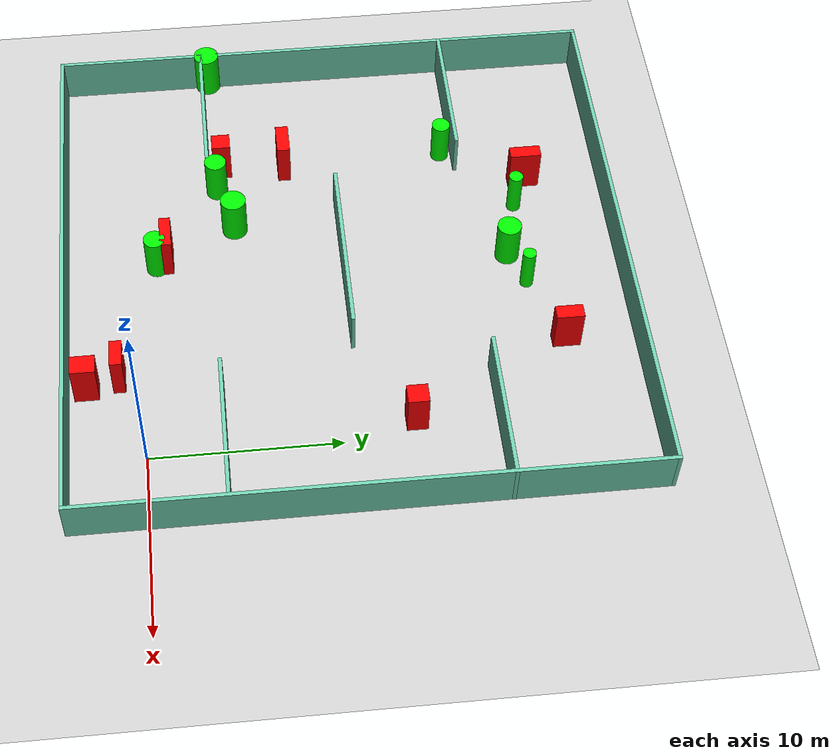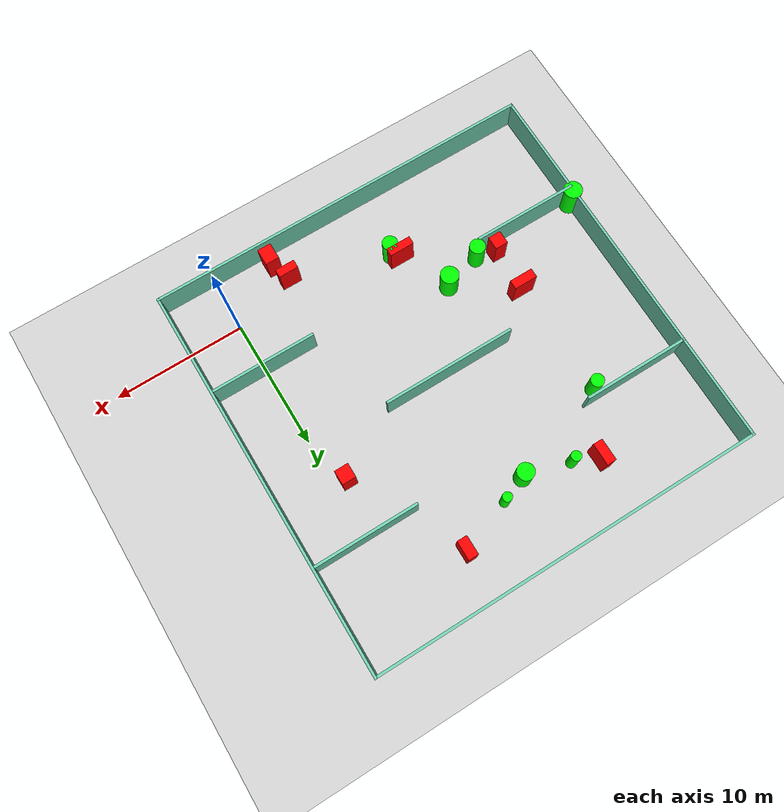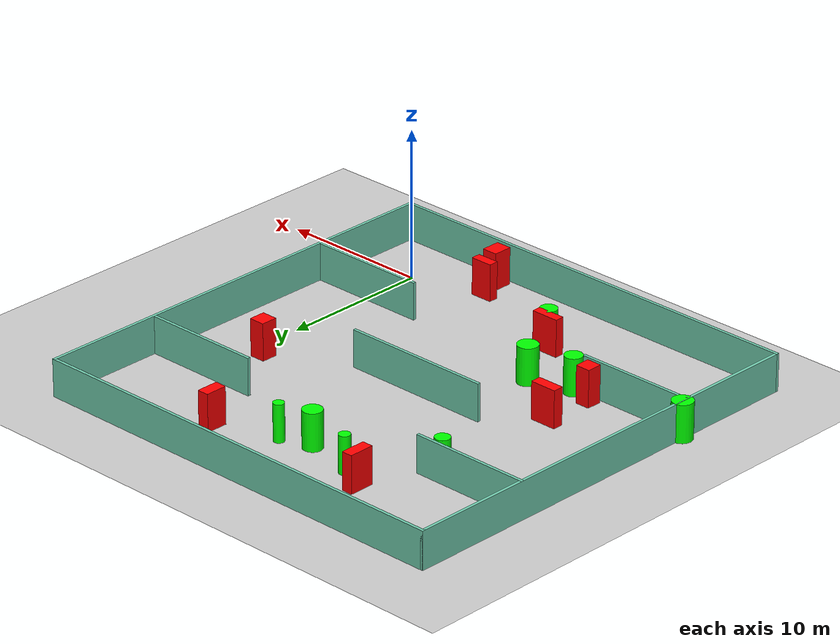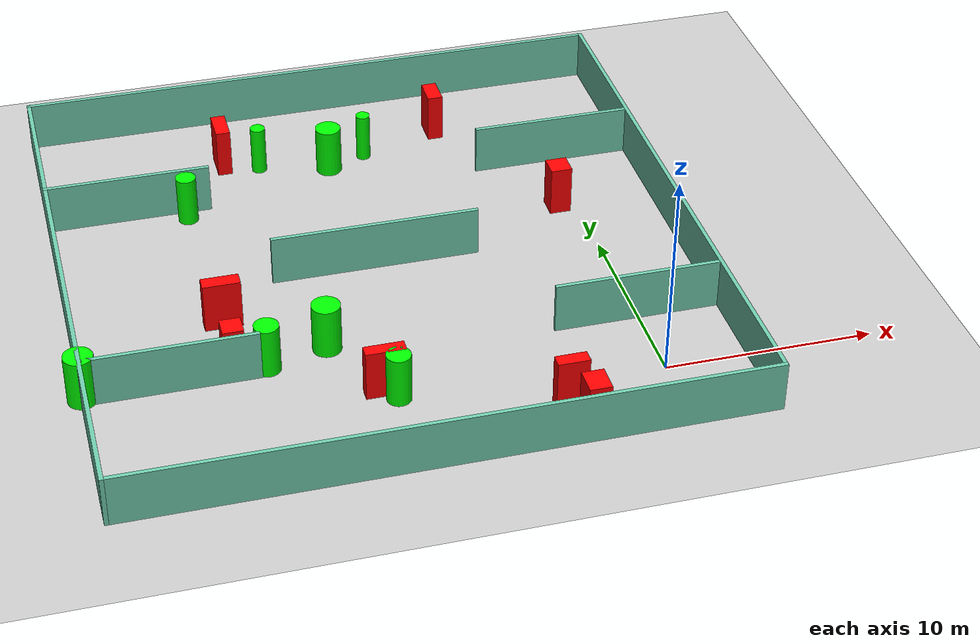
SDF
<sdf version="1.7">
 <world name="default">
  <light name="sun" type="directional">
   <pose>0 0 10 0 -0 0</pose>
   <diffuse>0.8 0.8 0.8 1</diffuse>
   <specular>0.2 0.2 0.2 1</specular>
   <attenuation>
    <range>1000</range>
    <constant>0.9</constant>
    <linear>0.01</linear>
    <quadratic>0.001</quadratic>
   </attenuation>
   <direction>-0.5 0.1 -0.9</direction>
   <spot><inner_angle>0</inner_angle><outer_angle>0</outer_angle><falloff>0</falloff></spot>
  </light>
  <model name="ground_plane">
   <static>1</static>
   <link name="link">
    <collision name="collision">
     <geometry><plane><normal>0 0 1</normal><size>100 100</size></plane></geometry>
     <surface>
      <contact><collide_bitmask>65535</collide_bitmask></contact>
      <friction><ode><mu>100</mu><mu2>50</mu2></ode></friction>
     </surface>
    </collision>
    <visual name="visual">
     <cast_shadows>0</cast_shadows>
     <geometry><plane><normal>0 0 1</normal><size>100 100</size></plane></geometry>
     <material>
      <script><uri>file://media/materials/scripts/gazebo.material</uri><name>Gazebo/Grey</name></script>
     </material>
    </visual>
   </link>
  </model>
  <gravity>0 0 -9.8</gravity>
  <magnetic_field>6e-06 2.3e-05 -4.2e-05</magnetic_field>
  <atmosphere type="adiabatic"/>
  <physics type="ode">
   <max_step_size>0.001</max_step_size>
   <real_time_factor>1</real_time_factor>
   <real_time_update_rate>1000</real_time_update_rate>
  </physics>
  <scene><ambient>0.4 0.4 0.4 1</ambient><background>0.7 0.7 0.7 1</background><shadows>1</shadows></scene>
  <spherical_coordinates>
   <surface_model>EARTH_WGS84</surface_model>
   <latitude_deg>0</latitude_deg>
   <longitude_deg>0</longitude_deg>
   <elevation>0</elevation>
   <heading_deg>0</heading_deg>
  </spherical_coordinates>
  <model name="my_base_walls">
   <link name="Wall_10">
    <collision name="Wall_10_Collision">
     <geometry><box><size>8.2 0.2 2.5</size></box></geometry>
     <pose>0 0 1.25 0 -0 0</pose>
    </collision>
    <visual name="Wall_10_Visual">
     <pose>0 0 1.25 0 -0 0</pose>
     <geometry><box><size>8.2 0.2 2.5</size></box></geometry>
     <material>
      <script><uri>file://media/materials/scripts/gazebo.material</uri><name>Gazebo/Grey</name></script>
      <ambient>0.435294 0.796078 0.67451 1</ambient>
     </material>
     <meta><layer>0</layer></meta>
    </visual>
    <pose>-11 -7 0 0 -0 0</pose>
   </link>
   <link name="Wall_12">
    <collision name="Wall_12_Collision">
     <geometry><box><size>8.2 0.2 2.5</size></box></geometry>
     <pose>0 0 1.25 0 -0 0</pose>
    </collision>
    <visual name="Wall_12_Visual">
     <pose>0 0 1.25 0 -0 0</pose>
     <geometry><box><size>8.2 0.2 2.5</size></box></geometry>
     <material>
      <script><uri>file://media/materials/scripts/gazebo.material</uri><name>Gazebo/Grey</name></script>
      <ambient>0.435294 0.796078 0.67451 1</ambient>
     </material>
     <meta><layer>0</layer></meta>
    </visual>
    <pose>-11 7 0 0 -0 0</pose>
   </link>
   <link name="Wall_14">
    <collision name="Wall_14_Collision">
     <geometry><box><size>8.2 0.2 2.5</size></box></geometry>
     <pose>0 0 1.25 0 -0 0</pose>
    </collision>
    <visual name="Wall_14_Visual">
     <pose>0 0 1.25 0 -0 0</pose>
     <geometry><box><size>8.2 0.2 2.5</size></box></geometry>
     <material>
      <script><uri>file://media/materials/scripts/gazebo.material</uri><name>Gazebo/Grey</name></script>
      <ambient>0.435294 0.796078 0.67451 1</ambient>
     </material>
     <meta><layer>0</layer></meta>
    </visual>
    <pose>11 7 0 0 -0 3.14159</pose>
   </link>
   <link name="Wall_16">
    <collision name="Wall_16_Collision">
     <geometry><box><size>10.2 0.2 2.5</size></box></geometry>
     <pose>0 0 1.25 0 -0 0</pose>
    </collision>
    <visual name="Wall_16_Visual">
     <pose>0 0 1.25 0 -0 0</pose>
     <geometry><box><size>10.2 0.2 2.5</size></box></geometry>
     <material>
      <script><uri>file://media/materials/scripts/gazebo.material</uri><name>Gazebo/Grey</name></script>
      <ambient>0.435294 0.796078 0.67451 1</ambient>
     </material>
     <meta><layer>0</layer></meta>
    </visual>
    <pose>0 0 0 0 -0 3.14159</pose>
   </link>
   <link name="Wall_2">
    <collision name="Wall_2_Collision">
     <geometry><box><size>30.2 0.2 2.5</size></box></geometry>
     <pose>0 0 1.25 0 -0 0</pose>
    </collision>
    <visual name="Wall_2_Visual">
     <pose>0 0 1.25 0 -0 0</pose>
     <geometry><box><size>30.2 0.2 2.5</size></box></geometry>
     <material>
      <script><uri>file://media/materials/scripts/gazebo.material</uri><name>Gazebo/Grey</name></script>
      <ambient>0.435294 0.796078 0.67451 1</ambient>
     </material>
     <meta><layer>0</layer></meta>
    </visual>
    <pose>0 -15 0 0 -0 3.14159</pose>
   </link>
   <link name="Wall_3">
    <collision name="Wall_3_Collision">
     <geometry><box><size>30.2 0.2 2.5</size></box></geometry>
     <pose>0 0 1.25 0 -0 0</pose>
    </collision>
    <visual name="Wall_3_Visual">
     <pose>0 0 1.25 0 -0 0</pose>
     <geometry><box><size>30.2 0.2 2.5</size></box></geometry>
     <material>
      <script><uri>file://media/materials/scripts/gazebo.material</uri><name>Gazebo/Grey</name></script>
      <ambient>0.435294 0.796078 0.67451 1</ambient>
     </material>
     <meta><layer>0</layer></meta>
    </visual>
    <pose>-15 0 0 0 -0 1.5708</pose>
   </link>
   <link name="Wall_4">
    <collision name="Wall_4_Collision">
     <geometry><box><size>30.2 0.2 2.5</size></box></geometry>
     <pose>0 0 1.25 0 -0 0</pose>
    </collision>
    <visual name="Wall_4_Visual">
     <pose>0 0 1.25 0 -0 0</pose>
     <geometry><box><size>30.2 0.2 2.5</size></box></geometry>
     <material>
      <script><uri>file://media/materials/scripts/gazebo.material</uri><name>Gazebo/Grey</name></script>
      <ambient>0.435294 0.796078 0.67451 1</ambient>
     </material>
     <meta><layer>0</layer></meta>
    </visual>
    <pose>0 15 0 0 -0 0</pose>
   </link>
   <link name="Wall_6">
    <collision name="Wall_6_Collision">
     <geometry><box><size>30.2 0.2 2.5</size></box></geometry>
     <pose>0 0 1.25 0 -0 0</pose>
    </collision>
    <visual name="Wall_6_Visual">
     <pose>0 0 1.25 0 -0 0</pose>
     <geometry><box><size>30.2 0.2 2.5</size></box></geometry>
     <material>
      <script><uri>file://media/materials/scripts/gazebo.material</uri><name>Gazebo/Grey</name></script>
      <ambient>0.435294 0.796078 0.67451 1</ambient>
     </material>
     <meta><layer>0</layer></meta>
    </visual>
    <pose>15 0 0 0 -0 1.5708</pose>
   </link>
   <link name="Wall_8">
    <collision name="Wall_8_Collision">
     <geometry><box><size>8.2 0.2 2.5</size></box></geometry>
     <pose>0 0 1.25 0 -0 0</pose>
    </collision>
    <visual name="Wall_8_Visual">
     <pose>0 0 1.25 0 -0 0</pose>
     <geometry><box><size>8.2 0.2 2.5</size></box></geometry>
     <material>
      <script><uri>file://media/materials/scripts/gazebo.material</uri><name>Gazebo/Grey</name></script>
      <ambient>0.435294 0.796078 0.67451 1</ambient>
     </material>
     <meta><layer>0</layer></meta>
    </visual>
    <pose>11 -7 0 0 -0 3.14159</pose>
   </link>
   <static>1</static>
   <pose>-11 11 0 0 -0 0</pose>
  </model>
  <model name="cylinder1">
   <static>1</static>
   <link name="link">
    <inertial>
     <mass>1</mass>
     <inertia><ixx>0.5</ixx><ixy>0</ixy><ixz>0</ixz><iyy>0.5</iyy><iyz>0</iyz><izz>1</izz></inertia>
    </inertial>
    <collision name="collision">
     <geometry><cylinder><radius>0.35637598908765317</radius><length>2.5</length></cylinder></geometry>
    </collision>
    <visual name="visual">
     <geometry><cylinder><radius>0.35637598908765317</radius><length>2.5</length></cylinder></geometry>
     <material>
      <ambient>0 1 0 1</ambient>
      <diffuse>0 1 0 1</diffuse>
      <specular>0.1 0.1 0.1 1</specular>
      <emissive>0 0 0 0</emissive>
     </material>
    </visual>
   </link>
   <pose>-9.410218002561303 20.775880090817907 1.25 0 0 0</pose>
  </model>
  <model name="cylinder2">
   <static>1</static>
   <link name="link">
    <inertial>
     <mass>1</mass>
     <inertia><ixx>0.5</ixx><ixy>0</ixy><ixz>0</ixz><iyy>0.5</iyy><iyz>0</iyz><izz>1</izz></inertia>
    </inertial>
    <collision name="collision">
     <geometry><cylinder><radius>0.6895140122656187</radius><length>2.5</length></cylinder></geometry>
    </collision>
    <visual name="visual">
     <geometry><cylinder><radius>0.6895140122656187</radius><length>2.5</length></cylinder></geometry>
     <material>
      <ambient>0 1 0 1</ambient>
      <diffuse>0 1 0 1</diffuse>
      <specular>0.1 0.1 0.1 1</specular>
      <emissive>0 0 0 0</emissive>
     </material>
    </visual>
   </link>
   <pose>-14.63984526887499 5.27040037603604 1.25 0 0 0</pose>
  </model>
  <model name="cylinder3">
   <static>1</static>
   <link name="link">
    <inertial>
     <mass>1</mass>
     <inertia><ixx>0.5</ixx><ixy>0</ixy><ixz>0</ixz><iyy>0.5</iyy><iyz>0</iyz><izz>1</izz></inertia>
    </inertial>
    <collision name="collision">
     <geometry><cylinder><radius>0.6471488026917411</radius><length>2.5</length></cylinder></geometry>
    </collision>
    <visual name="visual">
     <geometry><cylinder><radius>0.6471488026917411</radius><length>2.5</length></cylinder></geometry>
     <material>
      <ambient>0 1 0 1</ambient>
      <diffuse>0 1 0 1</diffuse>
      <specular>0.1 0.1 0.1 1</specular>
      <emissive>0 0 0 0</emissive>
     </material>
    </visual>
   </link>
   <pose>-11.40357081747218 20.004518216118424 1.25 0 0 0</pose>
  </model>
  <model name="cylinder4">
   <static>1</static>
   <link name="link">
    <inertial>
     <mass>1</mass>
     <inertia><ixx>0.5</ixx><ixy>0</ixy><ixz>0</ixz><iyy>0.5</iyy><iyz>0</iyz><izz>1</izz></inertia>
    </inertial>
    <collision name="collision">
     <geometry><cylinder><radius>0.6939221003253588</radius><length>2.5</length></cylinder></geometry>
    </collision>
    <visual name="visual">
     <geometry><cylinder><radius>0.6939221003253588</radius><length>2.5</length></cylinder></geometry>
     <material>
      <ambient>0 1 0 1</ambient>
      <diffuse>0 1 0 1</diffuse>
      <specular>0.1 0.1 0.1 1</specular>
      <emissive>0 0 0 0</emissive>
     </material>
    </visual>
   </link>
   <pose>-25.98725831404177 4.346934813297237 1.25 0 0 0</pose>
  </model>
  <model name="cylinder5">
   <static>1</static>
   <link name="link">
    <inertial>
     <mass>1</mass>
     <inertia><ixx>0.5</ixx><ixy>0</ixy><ixz>0</ixz><iyy>0.5</iyy><iyz>0</iyz><izz>1</izz></inertia>
    </inertial>
    <collision name="collision">
     <geometry><cylinder><radius>0.5810064124522205</radius><length>2.5</length></cylinder></geometry>
    </collision>
    <visual name="visual">
     <geometry><cylinder><radius>0.5810064124522205</radius><length>2.5</length></cylinder></geometry>
     <material>
      <ambient>0 1 0 1</ambient>
      <diffuse>0 1 0 1</diffuse>
      <specular>0.1 0.1 0.1 1</specular>
      <emissive>0 0 0 0</emissive>
     </material>
    </visual>
   </link>
   <pose>-12.280278782675762 0.909226687134395 1.25 0 0 0</pose>
  </model>
  <model name="cylinder6">
   <static>1</static>
   <link name="link">
    <inertial>
     <mass>1</mass>
     <inertia><ixx>0.5</ixx><ixy>0</ixy><ixz>0</ixz><iyy>0.5</iyy><iyz>0</iyz><izz>1</izz></inertia>
    </inertial>
    <collision name="collision">
     <geometry><cylinder><radius>0.3811761807674727</radius><length>2.5</length></cylinder></geometry>
    </collision>
    <visual name="visual">
     <geometry><cylinder><radius>0.3811761807674727</radius><length>2.5</length></cylinder></geometry>
     <material>
      <ambient>0 1 0 1</ambient>
      <diffuse>0 1 0 1</diffuse>
      <specular>0.1 0.1 0.1 1</specular>
      <emissive>0 0 0 0</emissive>
     </material>
    </visual>
   </link>
   <pose>-14.897211098220957 20.90577901300225 1.25 0 0 0</pose>
  </model>
  <model name="cylinder7">
   <static>1</static>
   <link name="link">
    <inertial>
     <mass>1</mass>
     <inertia><ixx>0.5</ixx><ixy>0</ixy><ixz>0</ixz><iyy>0.5</iyy><iyz>0</iyz><izz>1</izz></inertia>
    </inertial>
    <collision name="collision">
     <geometry><cylinder><radius>0.5950667473241318</radius><length>2.5</length></cylinder></geometry>
    </collision>
    <visual name="visual">
     <geometry><cylinder><radius>0.5950667473241318</radius><length>2.5</length></cylinder></geometry>
     <material>
      <ambient>0 1 0 1</ambient>
      <diffuse>0 1 0 1</diffuse>
      <specular>0.1 0.1 0.1 1</specular>
      <emissive>0 0 0 0</emissive>
     </material>
    </visual>
   </link>
   <pose>-17.542883492463357 4.450112288903197 1.25 0 0 0</pose>
  </model>
  <model name="cylinder8">
   <static>1</static>
   <link name="link">
    <inertial>
     <mass>1</mass>
     <inertia><ixx>0.5</ixx><ixy>0</ixy><ixz>0</ixz><iyy>0.5</iyy><iyz>0</iyz><izz>1</izz></inertia>
    </inertial>
    <collision name="collision">
     <geometry><cylinder><radius>0.49963637899248414</radius><length>2.5</length></cylinder></geometry>
    </collision>
    <visual name="visual">
     <geometry><cylinder><radius>0.49963637899248414</radius><length>2.5</length></cylinder></geometry>
     <material>
      <ambient>0 1 0 1</ambient>
      <diffuse>0 1 0 1</diffuse>
      <specular>0.1 0.1 0.1 1</specular>
      <emissive>0 0 0 0</emissive>
     </material>
    </visual>
   </link>
   <pose>-19.168640877767473 17.282973540943566 1.25 0 0 0</pose>
  </model>
  <model name="box1">
   <static>1</static>
   <link name="link">
    <inertial>
     <mass>1</mass>
     <inertia><ixx>0.083</ixx><ixy>0</ixy><ixz>0</ixz><iyy>0.083</iyy><iyz>0</iyz><izz>0.083</izz></inertia>
    </inertial>
    <collision name="collision">
     <geometry><box><size>0.7269329177023052 1.690192648417991 2.5</size></box></geometry>
    </collision>
    <visual name="visual">
     <geometry><box><size>0.7269329177023052 1.690192648417991 2.5</size></box></geometry>
     <material>
      <ambient>1 0 0 1</ambient>
      <diffuse>1 0 0 1</diffuse>
      <specular>0.1 0.1 0.1 1</specular>
      <emissive>0 0 0 0</emissive>
     </material>
    </visual>
    <sensor name="my_contact" type="contact">
     <contact><collision>box_collision</collision><topic>__default_topic__</topic></contact>
    </sensor>
   </link>
   <pose>-16.685003286816475 21.68967974951166 1.25 0 0 0</pose>
  </model>
  <model name="box2">
   <static>1</static>
   <link name="link">
    <inertial>
     <mass>1</mass>
     <inertia><ixx>0.083</ixx><ixy>0</ixy><ixz>0</ixz><iyy>0.083</iyy><iyz>0</iyz><izz>0.083</izz></inertia>
    </inertial>
    <collision name="collision">
     <geometry><box><size>0.9878870829356243 1.0158278252774162 2.5</size></box></geometry>
    </collision>
    <visual name="visual">
     <geometry><box><size>0.9878870829356243 1.0158278252774162 2.5</size></box></geometry>
     <material>
      <ambient>1 0 0 1</ambient>
      <diffuse>1 0 0 1</diffuse>
      <specular>0.1 0.1 0.1 1</specular>
      <emissive>0 0 0 0</emissive>
     </material>
    </visual>
    <sensor name="my_contact" type="contact">
     <contact><collision>box_collision</collision><topic>__default_topic__</topic></contact>
    </sensor>
   </link>
   <pose>-19.05896579282964 4.824954213668841 1.25 0 0 0</pose>
  </model>
  <model name="box3">
   <static>1</static>
   <link name="link">
    <inertial>
     <mass>1</mass>
     <inertia><ixx>0.083</ixx><ixy>0</ixy><ixz>0</ixz><iyy>0.083</iyy><iyz>0</iyz><izz>0.083</izz></inertia>
    </inertial>
    <collision name="collision">
     <geometry><box><size>1.80254087817318 0.7048165170945425 2.5</size></box></geometry>
    </collision>
    <visual name="visual">
     <geometry><box><size>1.80254087817318 0.7048165170945425 2.5</size></box></geometry>
     <material>
      <ambient>1 0 0 1</ambient>
      <diffuse>1 0 0 1</diffuse>
      <specular>0.1 0.1 0.1 1</specular>
      <emissive>0 0 0 0</emissive>
     </material>
    </visual>
    <sensor name="my_contact" type="contact">
     <contact><collision>box_collision</collision><topic>__default_topic__</topic></contact>
    </sensor>
   </link>
   <pose>-18.966668370138812 8.298790965533103 1.25 0 0 0</pose>
  </model>
  <model name="box4">
   <static>1</static>
   <link name="link">
    <inertial>
     <mass>1</mass>
     <inertia><ixx>0.083</ixx><ixy>0</ixy><ixz>0</ixz><iyy>0.083</iyy><iyz>0</iyz><izz>0.083</izz></inertia>
    </inertial>
    <collision name="collision">
     <geometry><box><size>1.507050249647345 0.6375846011819152 2.5</size></box></geometry>
    </collision>
    <visual name="visual">
     <geometry><box><size>1.507050249647345 0.6375846011819152 2.5</size></box></geometry>
     <material>
      <ambient>1 0 0 1</ambient>
      <diffuse>1 0 0 1</diffuse>
      <specular>0.1 0.1 0.1 1</specular>
      <emissive>0 0 0 0</emissive>
     </material>
    </visual>
    <sensor name="my_contact" type="contact">
     <contact><collision>box_collision</collision><topic>__default_topic__</topic></contact>
    </sensor>
   </link>
   <pose>-4.939566975352223 -1.2831823727566167 1.25 0 0 0</pose>
  </model>
  <model name="box5">
   <static>1</static>
   <link name="link">
    <inertial>
     <mass>1</mass>
     <inertia><ixx>0.083</ixx><ixy>0</ixy><ixz>0</ixz><iyy>0.083</iyy><iyz>0</iyz><izz>0.083</izz></inertia>
    </inertial>
    <collision name="collision">
     <geometry><box><size>1.8958600856026302 0.6104286493584553 2.5</size></box></geometry>
    </collision>
    <visual name="visual">
     <geometry><box><size>1.8958600856026302 0.6104286493584553 2.5</size></box></geometry>
     <material>
      <ambient>1 0 0 1</ambient>
      <diffuse>1 0 0 1</diffuse>
      <specular>0.1 0.1 0.1 1</specular>
      <emissive>0 0 0 0</emissive>
     </material>
    </visual>
    <sensor name="my_contact" type="contact">
     <contact><collision>box_collision</collision><topic>__default_topic__</topic></contact>
    </sensor>
   </link>
   <pose>-12.773450111383825 1.5006549478537865 1.25 0 0 0</pose>
  </model>
  <model name="box6">
   <static>1</static>
   <link name="link">
    <inertial>
     <mass>1</mass>
     <inertia><ixx>0.083</ixx><ixy>0</ixy><ixz>0</ixz><iyy>0.083</iyy><iyz>0</iyz><izz>0.083</izz></inertia>
    </inertial>
    <collision name="collision">
     <geometry><box><size>1.050690320218692 1.2795119927374257 2.5</size></box></geometry>
    </collision>
    <visual name="visual">
     <geometry><box><size>1.050690320218692 1.2795119927374257 2.5</size></box></geometry>
     <material>
      <ambient>1 0 0 1</ambient>
      <diffuse>1 0 0 1</diffuse>
      <specular>0.1 0.1 0.1 1</specular>
      <emissive>0 0 0 0</emissive>
     </material>
    </visual>
    <sensor name="my_contact" type="contact">
     <contact><collision>box_collision</collision><topic>__default_topic__</topic></contact>
    </sensor>
   </link>
   <pose>-4.363324873734353 -2.967737008703848 1.25 0 0 0</pose>
  </model>
  <model name="box7">
   <static>1</static>
   <link name="link">
    <inertial>
     <mass>1</mass>
     <inertia><ixx>0.083</ixx><ixy>0</ixy><ixz>0</ixz><iyy>0.083</iyy><iyz>0</iyz><izz>0.083</izz></inertia>
    </inertial>
    <collision name="collision">
     <geometry><box><size>0.773081211204323 1.4610040279171526 2.5</size></box></geometry>
    </collision>
    <visual name="visual">
     <geometry><box><size>0.773081211204323 1.4610040279171526 2.5</size></box></geometry>
     <material>
      <ambient>1 0 0 1</ambient>
      <diffuse>1 0 0 1</diffuse>
      <specular>0.1 0.1 0.1 1</specular>
      <emissive>0 0 0 0</emissive>
     </material>
    </visual>
    <sensor name="my_contact" type="contact">
     <contact><collision>box_collision</collision><topic>__default_topic__</topic></contact>
    </sensor>
   </link>
   <pose>-5.345769884033876 22.21943968481173 1.25 0 0 0</pose>
  </model>
  <model name="box8">
   <static>1</static>
   <link name="link">
    <inertial>
     <mass>1</mass>
     <inertia><ixx>0.083</ixx><ixy>0</ixy><ixz>0</ixz><iyy>0.083</iyy><iyz>0</iyz><izz>0.083</izz></inertia>
    </inertial>
    <collision name="collision">
     <geometry><box><size>1.0582933467048776 1.0964535670827444 2.5</size></box></geometry>
    </collision>
    <visual name="visual">
     <geometry><box><size>1.0582933467048776 1.0964535670827444 2.5</size></box></geometry>
     <material>
      <ambient>1 0 0 1</ambient>
      <diffuse>1 0 0 1</diffuse>
      <specular>0.1 0.1 0.1 1</specular>
      <emissive>0 0 0 0</emissive>
     </material>
    </visual>
    <sensor name="my_contact" type="contact">
     <contact><collision>box_collision</collision><topic>__default_topic__</topic></contact>
    </sensor>
   </link>
   <pose>-0.9668520605965654 13.75988214852688 1.25 0 0 0</pose>
  </model>
 </world>
</sdf>
